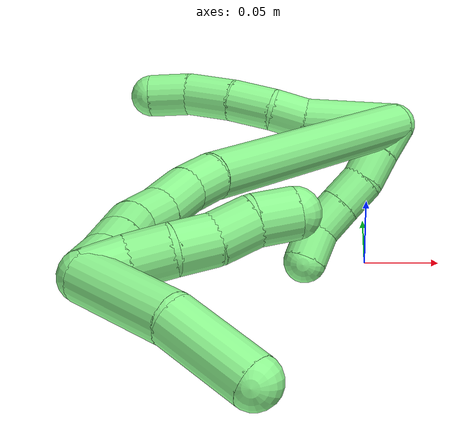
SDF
<sdf version="1.7">
 <world name="default">
  <model name="13">
   <static>0</static>
   <link name="13">
    <collision name="collision-cylinder-e_1_2_8">
     <pose>-0.026139 -0.002674 0.000236 1.48257 -1.46847 -1.3811</pose>
     <geometry><cylinder><radius>0.0125</radius><length>0.052552</length></cylinder></geometry>
     <surface>
      <friction><ode><mu>1.16</mu><mu2>1.16</mu2><slip1>0</slip1><slip2>0</slip2></ode></friction>
      <contact><ode><kp>1e+06</kp><kd>1</kd><max_vel>0</max_vel><min_depth>0.001</min_depth></ode></contact>
     </surface>
    </collision>
    <visual name="visual-cylinder-e_1_2_8">
     <pose>-0.026139 -0.002674 0.000236 1.48257 -1.46847 -1.3811</pose>
     <geometry><cylinder><radius>0.0125</radius><length>0.052552</length></cylinder></geometry>
     <material><ambient>0.564706 0.984314 0.572549 1</ambient></material>
    </visual>
    <collision name="collision-cylinder-e_2_8_9">
     <pose>-0.062251 -0.003985 0.000845 -1.30399 -1.43019 1.17081</pose>
     <geometry><cylinder><radius>0.0125</radius><length>0.020146</length></cylinder></geometry>
     <surface>
      <friction><ode><mu>1.16</mu><mu2>1.16</mu2><slip1>0</slip1><slip2>0</slip2></ode></friction>
      <contact><ode><kp>1e+06</kp><kd>1</kd><max_vel>0</max_vel><min_depth>0.001</min_depth></ode></contact>
     </surface>
    </collision>
    <visual name="visual-cylinder-e_2_8_9">
     <pose>-0.062251 -0.003985 0.000845 -1.30399 -1.43019 1.17081</pose>
     <geometry><cylinder><radius>0.0125</radius><length>0.020146</length></cylinder></geometry>
     <material><ambient>0.564706 0.984314 0.572549 1</ambient></material>
    </visual>
    <collision name="collision-cylinder-e_3_9_10">
     <pose>-0.085007 -0.001952 -0.001076 -2.85659 -1.38597 2.79941</pose>
     <geometry><cylinder><radius>0.0125</radius><length>0.026009</length></cylinder></geometry>
     <surface>
      <friction><ode><mu>1.16</mu><mu2>1.16</mu2><slip1>0</slip1><slip2>0</slip2></ode></friction>
      <contact><ode><kp>1e+06</kp><kd>1</kd><max_vel>0</max_vel><min_depth>0.001</min_depth></ode></contact>
     </surface>
    </collision>
    <visual name="visual-cylinder-e_3_9_10">
     <pose>-0.085007 -0.001952 -0.001076 -2.85659 -1.38597 2.79941</pose>
     <geometry><cylinder><radius>0.0125</radius><length>0.026009</length></cylinder></geometry>
     <material><ambient>0.564706 0.984314 0.572549 1</ambient></material>
    </visual>
    <collision name="collision-cylinder-e_4_10_11">
     <pose>-0.111302 -0.001717 -0.006394 2.99814 -1.34839 -2.96225</pose>
     <geometry><cylinder><radius>0.0125</radius><length>0.027706</length></cylinder></geometry>
     <surface>
      <friction><ode><mu>1.16</mu><mu2>1.16</mu2><slip1>0</slip1><slip2>0</slip2></ode></friction>
      <contact><ode><kp>1e+06</kp><kd>1</kd><max_vel>0</max_vel><min_depth>0.001</min_depth></ode></contact>
     </surface>
    </collision>
    <visual name="visual-cylinder-e_4_10_11">
     <pose>-0.111302 -0.001717 -0.006394 2.99814 -1.34839 -2.96225</pose>
     <geometry><cylinder><radius>0.0125</radius><length>0.027706</length></cylinder></geometry>
     <material><ambient>0.564706 0.984314 0.572549 1</ambient></material>
    </visual>
    <collision name="collision-cylinder-e_5_11_6">
     <pose>-0.136346 -0.004552 -0.01001 1.81276 -1.35974 -1.60251</pose>
     <geometry><cylinder><radius>0.0125</radius><length>0.023587</length></cylinder></geometry>
     <surface>
      <friction><ode><mu>1.16</mu><mu2>1.16</mu2><slip1>0</slip1><slip2>0</slip2></ode></friction>
      <contact><ode><kp>1e+06</kp><kd>1</kd><max_vel>0</max_vel><min_depth>0.001</min_depth></ode></contact>
     </surface>
    </collision>
    <visual name="visual-cylinder-e_5_11_6">
     <pose>-0.136346 -0.004552 -0.01001 1.81276 -1.35974 -1.60251</pose>
     <geometry><cylinder><radius>0.0125</radius><length>0.023587</length></cylinder></geometry>
     <material><ambient>0.564706 0.984314 0.572549 1</ambient></material>
    </visual>
    <collision name="collision-cylinder-e_1_2_12">
     <pose>-0.003356 -0.008469 0.004124 1.11763 -0.342289 -0.215312</pose>
     <geometry><cylinder><radius>0.0125</radius><length>0.02</length></cylinder></geometry>
     <surface>
      <friction><ode><mu>1.16</mu><mu2>1.16</mu2><slip1>0</slip1><slip2>0</slip2></ode></friction>
      <contact><ode><kp>1e+06</kp><kd>1</kd><max_vel>0</max_vel><min_depth>0.001</min_depth></ode></contact>
     </surface>
    </collision>
    <visual name="visual-cylinder-e_1_2_12">
     <pose>-0.003356 -0.008469 0.004124 1.11763 -0.342289 -0.215312</pose>
     <geometry><cylinder><radius>0.0125</radius><length>0.02</length></cylinder></geometry>
     <material><ambient>0.564706 0.984314 0.572549 1</ambient></material>
    </visual>
    <collision name="collision-cylinder-e_2_12_13">
     <pose>-0.009711 -0.025744 0.01192 1.17577 -0.304445 -0.203786</pose>
     <geometry><cylinder><radius>0.0125</radius><length>0.02</length></cylinder></geometry>
     <surface>
      <friction><ode><mu>1.16</mu><mu2>1.16</mu2><slip1>0</slip1><slip2>0</slip2></ode></friction>
      <contact><ode><kp>1e+06</kp><kd>1</kd><max_vel>0</max_vel><min_depth>0.001</min_depth></ode></contact>
     </surface>
    </collision>
    <visual name="visual-cylinder-e_2_12_13">
     <pose>-0.009711 -0.025744 0.01192 1.17577 -0.304445 -0.203786</pose>
     <geometry><cylinder><radius>0.0125</radius><length>0.02</length></cylinder></geometry>
     <material><ambient>0.564706 0.984314 0.572549 1</ambient></material>
    </visual>
    <collision name="collision-cylinder-e_3_13_14">
     <pose>-0.017951 -0.042286 0.019148 1.13993 -0.551817 -0.359018</pose>
     <geometry><cylinder><radius>0.0125</radius><length>0.02</length></cylinder></geometry>
     <surface>
      <friction><ode><mu>1.16</mu><mu2>1.16</mu2><slip1>0</slip1><slip2>0</slip2></ode></friction>
      <contact><ode><kp>1e+06</kp><kd>1</kd><max_vel>0</max_vel><min_depth>0.001</min_depth></ode></contact>
     </surface>
    </collision>
    <visual name="visual-cylinder-e_3_13_14">
     <pose>-0.017951 -0.042286 0.019148 1.13993 -0.551817 -0.359018</pose>
     <geometry><cylinder><radius>0.0125</radius><length>0.02</length></cylinder></geometry>
     <material><ambient>0.564706 0.984314 0.572549 1</ambient></material>
    </visual>
    <collision name="collision-cylinder-e_4_14_15">
     <pose>-0.028294 -0.057839 0.026297 1.13994 -0.535284 -0.347958</pose>
     <geometry><cylinder><radius>0.0125</radius><length>0.02</length></cylinder></geometry>
     <surface>
      <friction><ode><mu>1.16</mu><mu2>1.16</mu2><slip1>0</slip1><slip2>0</slip2></ode></friction>
      <contact><ode><kp>1e+06</kp><kd>1</kd><max_vel>0</max_vel><min_depth>0.001</min_depth></ode></contact>
     </surface>
    </collision>
    <visual name="visual-cylinder-e_4_14_15">
     <pose>-0.028294 -0.057839 0.026297 1.13994 -0.535284 -0.347958</pose>
     <geometry><cylinder><radius>0.0125</radius><length>0.02</length></cylinder></geometry>
     <material><ambient>0.564706 0.984314 0.572549 1</ambient></material>
    </visual>
    <collision name="collision-cylinder-e_5_15_5">
     <pose>-0.035322 -0.074537 0.034058 1.13201 -0.193996 -0.123485</pose>
     <geometry><cylinder><radius>0.0125</radius><length>0.02</length></cylinder></geometry>
     <surface>
      <friction><ode><mu>1.16</mu><mu2>1.16</mu2><slip1>0</slip1><slip2>0</slip2></ode></friction>
      <contact><ode><kp>1e+06</kp><kd>1</kd><max_vel>0</max_vel><min_depth>0.001</min_depth></ode></contact>
     </surface>
    </collision>
    <visual name="visual-cylinder-e_5_15_5">
     <pose>-0.035322 -0.074537 0.034058 1.13201 -0.193996 -0.123485</pose>
     <geometry><cylinder><radius>0.0125</radius><length>0.02</length></cylinder></geometry>
     <material><ambient>0.564706 0.984314 0.572549 1</ambient></material>
    </visual>
    <collision name="collision-cylinder-e_1_2_16">
     <pose>-0.042166 -0.014835 0.071598 0.204302 -0.5231 -0.054865</pose>
     <geometry><cylinder><radius>0.0125</radius><length>0.168811</length></cylinder></geometry>
     <surface>
      <friction><ode><mu>1.16</mu><mu2>1.16</mu2><slip1>0</slip1><slip2>0</slip2></ode></friction>
      <contact><ode><kp>1e+06</kp><kd>1</kd><max_vel>0</max_vel><min_depth>0.001</min_depth></ode></contact>
     </surface>
    </collision>
    <visual name="visual-cylinder-e_1_2_16">
     <pose>-0.042166 -0.014835 0.071598 0.204302 -0.5231 -0.054865</pose>
     <geometry><cylinder><radius>0.0125</radius><length>0.168811</length></cylinder></geometry>
     <material><ambient>0.564706 0.984314 0.572549 1</ambient></material>
    </visual>
    <collision name="collision-cylinder-e_2_16_17">
     <pose>-0.089368 -0.033104 0.151361 0.398179 -0.516908 -0.106578</pose>
     <geometry><cylinder><radius>0.0125</radius><length>0.02038</length></cylinder></geometry>
     <surface>
      <friction><ode><mu>1.16</mu><mu2>1.16</mu2><slip1>0</slip1><slip2>0</slip2></ode></friction>
      <contact><ode><kp>1e+06</kp><kd>1</kd><max_vel>0</max_vel><min_depth>0.001</min_depth></ode></contact>
     </surface>
    </collision>
    <visual name="visual-cylinder-e_2_16_17">
     <pose>-0.089368 -0.033104 0.151361 0.398179 -0.516908 -0.106578</pose>
     <geometry><cylinder><radius>0.0125</radius><length>0.02038</length></cylinder></geometry>
     <material><ambient>0.564706 0.984314 0.572549 1</ambient></material>
    </visual>
    <collision name="collision-cylinder-e_3_17_18">
     <pose>-0.098527 -0.04112 0.170699 0.389126 -0.329042 -0.065408</pose>
     <geometry><cylinder><radius>0.0125</radius><length>0.025519</length></cylinder></geometry>
     <surface>
      <friction><ode><mu>1.16</mu><mu2>1.16</mu2><slip1>0</slip1><slip2>0</slip2></ode></friction>
      <contact><ode><kp>1e+06</kp><kd>1</kd><max_vel>0</max_vel><min_depth>0.001</min_depth></ode></contact>
     </surface>
    </collision>
    <visual name="visual-cylinder-e_3_17_18">
     <pose>-0.098527 -0.04112 0.170699 0.389126 -0.329042 -0.065408</pose>
     <geometry><cylinder><radius>0.0125</radius><length>0.025519</length></cylinder></geometry>
     <material><ambient>0.564706 0.984314 0.572549 1</ambient></material>
    </visual>
    <collision name="collision-cylinder-e_4_18_19">
     <pose>-0.106703 -0.048404 0.191978 0.261351 -0.36958 -0.049123</pose>
     <geometry><cylinder><radius>0.0125</radius><length>0.022438</length></cylinder></geometry>
     <surface>
      <friction><ode><mu>1.16</mu><mu2>1.16</mu2><slip1>0</slip1><slip2>0</slip2></ode></friction>
      <contact><ode><kp>1e+06</kp><kd>1</kd><max_vel>0</max_vel><min_depth>0.001</min_depth></ode></contact>
     </surface>
    </collision>
    <visual name="visual-cylinder-e_4_18_19">
     <pose>-0.106703 -0.048404 0.191978 0.261351 -0.36958 -0.049123</pose>
     <geometry><cylinder><radius>0.0125</radius><length>0.022438</length></cylinder></geometry>
     <material><ambient>0.564706 0.984314 0.572549 1</ambient></material>
    </visual>
    <collision name="collision-cylinder-e_5_19_20">
     <pose>-0.111489 -0.053518 0.211896 0.240924 -0.072475 -0.008777</pose>
     <geometry><cylinder><radius>0.0125</radius><length>0.02026</length></cylinder></geometry>
     <surface>
      <friction><ode><mu>1.16</mu><mu2>1.16</mu2><slip1>0</slip1><slip2>0</slip2></ode></friction>
      <contact><ode><kp>1e+06</kp><kd>1</kd><max_vel>0</max_vel><min_depth>0.001</min_depth></ode></contact>
     </surface>
    </collision>
    <visual name="visual-cylinder-e_5_19_20">
     <pose>-0.111489 -0.053518 0.211896 0.240924 -0.072475 -0.008777</pose>
     <geometry><cylinder><radius>0.0125</radius><length>0.02026</length></cylinder></geometry>
     <material><ambient>0.564706 0.984314 0.572549 1</ambient></material>
    </visual>
    <collision name="collision-cylinder-e_6_20_21">
     <pose>-0.11303 -0.058534 0.232346 0.240224 -0.073573 -0.008884</pose>
     <geometry><cylinder><radius>0.0125</radius><length>0.021967</length></cylinder></geometry>
     <surface>
      <friction><ode><mu>1.16</mu><mu2>1.16</mu2><slip1>0</slip1><slip2>0</slip2></ode></friction>
      <contact><ode><kp>1e+06</kp><kd>1</kd><max_vel>0</max_vel><min_depth>0.001</min_depth></ode></contact>
     </surface>
    </collision>
    <visual name="visual-cylinder-e_6_20_21">
     <pose>-0.11303 -0.058534 0.232346 0.240224 -0.073573 -0.008884</pose>
     <geometry><cylinder><radius>0.0125</radius><length>0.021967</length></cylinder></geometry>
     <material><ambient>0.564706 0.984314 0.572549 1</ambient></material>
    </visual>
    <collision name="collision-cylinder-e_7_21_1">
     <pose>-0.115413 -0.06346 0.25291 0.229555 -0.153412 -0.01772</pose>
     <geometry><cylinder><radius>0.0125</radius><length>0.020625</length></cylinder></geometry>
     <surface>
      <friction><ode><mu>1.16</mu><mu2>1.16</mu2><slip1>0</slip1><slip2>0</slip2></ode></friction>
      <contact><ode><kp>1e+06</kp><kd>1</kd><max_vel>0</max_vel><min_depth>0.001</min_depth></ode></contact>
     </surface>
    </collision>
    <visual name="visual-cylinder-e_7_21_1">
     <pose>-0.115413 -0.06346 0.25291 0.229555 -0.153412 -0.01772</pose>
     <geometry><cylinder><radius>0.0125</radius><length>0.020625</length></cylinder></geometry>
     <material><ambient>0.564706 0.984314 0.572549 1</ambient></material>
    </visual>
    <collision name="collision-cylinder-e_1_1_22">
     <pose>-0.09447 -0.0686 0.277352 0.191953 0.989656 0.103805</pose>
     <geometry><cylinder><radius>0.0125</radius><length>0.053884</length></cylinder></geometry>
     <surface>
      <friction><ode><mu>1.16</mu><mu2>1.16</mu2><slip1>0</slip1><slip2>0</slip2></ode></friction>
      <contact><ode><kp>1e+06</kp><kd>1</kd><max_vel>0</max_vel><min_depth>0.001</min_depth></ode></contact>
     </surface>
    </collision>
    <visual name="visual-cylinder-e_1_1_22">
     <pose>-0.09447 -0.0686 0.277352 0.191953 0.989656 0.103805</pose>
     <geometry><cylinder><radius>0.0125</radius><length>0.053884</length></cylinder></geometry>
     <material><ambient>0.564706 0.984314 0.572549 1</ambient></material>
    </visual>
    <collision name="collision-cylinder-e_2_22_4">
     <pose>-0.052426 -0.078809 0.301663 0.646341 1.00988 0.366088</pose>
     <geometry><cylinder><radius>0.0125</radius><length>0.046116</length></cylinder></geometry>
     <surface>
      <friction><ode><mu>1.16</mu><mu2>1.16</mu2><slip1>0</slip1><slip2>0</slip2></ode></friction>
      <contact><ode><kp>1e+06</kp><kd>1</kd><max_vel>0</max_vel><min_depth>0.001</min_depth></ode></contact>
     </surface>
    </collision>
    <visual name="visual-cylinder-e_2_22_4">
     <pose>-0.052426 -0.078809 0.301663 0.646341 1.00988 0.366088</pose>
     <geometry><cylinder><radius>0.0125</radius><length>0.046116</length></cylinder></geometry>
     <material><ambient>0.564706 0.984314 0.572549 1</ambient></material>
    </visual>
    <collision name="collision-cylinder-e_1_1_23">
     <pose>-0.108745 -0.061829 0.258779 -2.36924 0.969105 -1.82624</pose>
     <geometry><cylinder><radius>0.0125</radius><length>0.02</length></cylinder></geometry>
     <surface>
      <friction><ode><mu>1.16</mu><mu2>1.16</mu2><slip1>0</slip1><slip2>0</slip2></ode></friction>
      <contact><ode><kp>1e+06</kp><kd>1</kd><max_vel>0</max_vel><min_depth>0.001</min_depth></ode></contact>
     </surface>
    </collision>
    <visual name="visual-cylinder-e_1_1_23">
     <pose>-0.108745 -0.061829 0.258779 -2.36924 0.969105 -1.82624</pose>
     <geometry><cylinder><radius>0.0125</radius><length>0.02</length></cylinder></geometry>
     <material><ambient>0.564706 0.984314 0.572549 1</ambient></material>
    </visual>
    <collision name="collision-cylinder-e_2_23_24">
     <pose>-0.091634 -0.054151 0.251989 -2.20389 1.09017 -1.74974</pose>
     <geometry><cylinder><radius>0.0125</radius><length>0.02</length></cylinder></geometry>
     <surface>
      <friction><ode><mu>1.16</mu><mu2>1.16</mu2><slip1>0</slip1><slip2>0</slip2></ode></friction>
      <contact><ode><kp>1e+06</kp><kd>1</kd><max_vel>0</max_vel><min_depth>0.001</min_depth></ode></contact>
     </surface>
    </collision>
    <visual name="visual-cylinder-e_2_23_24">
     <pose>-0.091634 -0.054151 0.251989 -2.20389 1.09017 -1.74974</pose>
     <geometry><cylinder><radius>0.0125</radius><length>0.02</length></cylinder></geometry>
     <material><ambient>0.564706 0.984314 0.572549 1</ambient></material>
    </visual>
    <collision name="collision-cylinder-e_3_24_25">
     <pose>-0.074493 -0.047471 0.244477 -2.58787 0.974494 -2.15707</pose>
     <geometry><cylinder><radius>0.0125</radius><length>0.02</length></cylinder></geometry>
     <surface>
      <friction><ode><mu>1.16</mu><mu2>1.16</mu2><slip1>0</slip1><slip2>0</slip2></ode></friction>
      <contact><ode><kp>1e+06</kp><kd>1</kd><max_vel>0</max_vel><min_depth>0.001</min_depth></ode></contact>
     </surface>
    </collision>
    <visual name="visual-cylinder-e_3_24_25">
     <pose>-0.074493 -0.047471 0.244477 -2.58787 0.974494 -2.15707</pose>
     <geometry><cylinder><radius>0.0125</radius><length>0.02</length></cylinder></geometry>
     <material><ambient>0.564706 0.984314 0.572549 1</ambient></material>
    </visual>
    <collision name="collision-cylinder-e_4_25_26">
     <pose>-0.058656 -0.039574 0.235416 -2.28495 0.857711 -1.57221</pose>
     <geometry><cylinder><radius>0.0125</radius><length>0.02</length></cylinder></geometry>
     <surface>
      <friction><ode><mu>1.16</mu><mu2>1.16</mu2><slip1>0</slip1><slip2>0</slip2></ode></friction>
      <contact><ode><kp>1e+06</kp><kd>1</kd><max_vel>0</max_vel><min_depth>0.001</min_depth></ode></contact>
     </surface>
    </collision>
    <visual name="visual-cylinder-e_4_25_26">
     <pose>-0.058656 -0.039574 0.235416 -2.28495 0.857711 -1.57221</pose>
     <geometry><cylinder><radius>0.0125</radius><length>0.02</length></cylinder></geometry>
     <material><ambient>0.564706 0.984314 0.572549 1</ambient></material>
    </visual>
    <collision name="collision-cylinder-e_5_26_3">
     <pose>-0.042463 -0.03199 0.226823 -2.59153 1.04103 -2.22673</pose>
     <geometry><cylinder><radius>0.0125</radius><length>0.02</length></cylinder></geometry>
     <surface>
      <friction><ode><mu>1.16</mu><mu2>1.16</mu2><slip1>0</slip1><slip2>0</slip2></ode></friction>
      <contact><ode><kp>1e+06</kp><kd>1</kd><max_vel>0</max_vel><min_depth>0.001</min_depth></ode></contact>
     </surface>
    </collision>
    <visual name="visual-cylinder-e_5_26_3">
     <pose>-0.042463 -0.03199 0.226823 -2.59153 1.04103 -2.22673</pose>
     <geometry><cylinder><radius>0.0125</radius><length>0.02</length></cylinder></geometry>
     <material><ambient>0.564706 0.984314 0.572549 1</ambient></material>
    </visual>
    <collision name="collision-sphere-3">
     <pose>-0.033834 -0.029348 0.222515 0 -0 0</pose>
     <geometry><sphere><radius>0.0125</radius></sphere></geometry>
     <surface>
      <friction><ode><mu>1.16</mu><mu2>1.16</mu2><slip1>0</slip1><slip2>0</slip2></ode></friction>
      <contact><ode><kp>1e+06</kp><kd>1</kd><max_vel>0</max_vel><min_depth>0.001</min_depth></ode></contact>
     </surface>
    </collision>
    <visual name="visual-sphere-3">
     <pose>-0.033834 -0.029348 0.222515 0 -0 0</pose>
     <geometry><sphere><radius>0.0125</radius></sphere></geometry>
     <material><ambient>0.564706 0.984314 0.572549 1</ambient></material>
    </visual>
    <collision name="collision-sphere-26">
     <pose>-0.051092 -0.034631 0.231131 0 -0 0</pose>
     <geometry><sphere><radius>0.0125</radius></sphere></geometry>
     <surface>
      <friction><ode><mu>1.16</mu><mu2>1.16</mu2><slip1>0</slip1><slip2>0</slip2></ode></friction>
      <contact><ode><kp>1e+06</kp><kd>1</kd><max_vel>0</max_vel><min_depth>0.001</min_depth></ode></contact>
     </surface>
    </collision>
    <visual name="visual-sphere-26">
     <pose>-0.051092 -0.034631 0.231131 0 -0 0</pose>
     <geometry><sphere><radius>0.0125</radius></sphere></geometry>
     <material><ambient>0.564706 0.984314 0.572549 1</ambient></material>
    </visual>
    <collision name="collision-sphere-25">
     <pose>-0.066219 -0.044518 0.239701 0 -0 0</pose>
     <geometry><sphere><radius>0.0125</radius></sphere></geometry>
     <surface>
      <friction><ode><mu>1.16</mu><mu2>1.16</mu2><slip1>0</slip1><slip2>0</slip2></ode></friction>
      <contact><ode><kp>1e+06</kp><kd>1</kd><max_vel>0</max_vel><min_depth>0.001</min_depth></ode></contact>
     </surface>
    </collision>
    <visual name="visual-sphere-25">
     <pose>-0.066219 -0.044518 0.239701 0 -0 0</pose>
     <geometry><sphere><radius>0.0125</radius></sphere></geometry>
     <material><ambient>0.564706 0.984314 0.572549 1</ambient></material>
    </visual>
    <collision name="collision-sphere-24">
     <pose>-0.082767 -0.050424 0.249254 0 -0 0</pose>
     <geometry><sphere><radius>0.0125</radius></sphere></geometry>
     <surface>
      <friction><ode><mu>1.16</mu><mu2>1.16</mu2><slip1>0</slip1><slip2>0</slip2></ode></friction>
      <contact><ode><kp>1e+06</kp><kd>1</kd><max_vel>0</max_vel><min_depth>0.001</min_depth></ode></contact>
     </surface>
    </collision>
    <visual name="visual-sphere-24">
     <pose>-0.082767 -0.050424 0.249254 0 -0 0</pose>
     <geometry><sphere><radius>0.0125</radius></sphere></geometry>
     <material><ambient>0.564706 0.984314 0.572549 1</ambient></material>
    </visual>
    <collision name="collision-sphere-23">
     <pose>-0.100501 -0.057879 0.254725 0 -0 0</pose>
     <geometry><sphere><radius>0.0125</radius></sphere></geometry>
     <surface>
      <friction><ode><mu>1.16</mu><mu2>1.16</mu2><slip1>0</slip1><slip2>0</slip2></ode></friction>
      <contact><ode><kp>1e+06</kp><kd>1</kd><max_vel>0</max_vel><min_depth>0.001</min_depth></ode></contact>
     </surface>
    </collision>
    <visual name="visual-sphere-23">
     <pose>-0.100501 -0.057879 0.254725 0 -0 0</pose>
     <geometry><sphere><radius>0.0125</radius></sphere></geometry>
     <material><ambient>0.564706 0.984314 0.572549 1</ambient></material>
    </visual>
    <collision name="collision-sphere-4">
     <pose>-0.032901 -0.086197 0.311455 0 -0 0</pose>
     <geometry><sphere><radius>0.0125</radius></sphere></geometry>
     <surface>
      <friction><ode><mu>1.16</mu><mu2>1.16</mu2><slip1>0</slip1><slip2>0</slip2></ode></friction>
      <contact><ode><kp>1e+06</kp><kd>1</kd><max_vel>0</max_vel><min_depth>0.001</min_depth></ode></contact>
     </surface>
    </collision>
    <visual name="visual-sphere-4">
     <pose>-0.032901 -0.086197 0.311455 0 -0 0</pose>
     <geometry><sphere><radius>0.0125</radius></sphere></geometry>
     <material><ambient>0.564706 0.984314 0.572549 1</ambient></material>
    </visual>
    <collision name="collision-sphere-22">
     <pose>-0.071951 -0.071422 0.291871 0 -0 0</pose>
     <geometry><sphere><radius>0.0125</radius></sphere></geometry>
     <surface>
      <friction><ode><mu>1.16</mu><mu2>1.16</mu2><slip1>0</slip1><slip2>0</slip2></ode></friction>
      <contact><ode><kp>1e+06</kp><kd>1</kd><max_vel>0</max_vel><min_depth>0.001</min_depth></ode></contact>
     </surface>
    </collision>
    <visual name="visual-sphere-22">
     <pose>-0.071951 -0.071422 0.291871 0 -0 0</pose>
     <geometry><sphere><radius>0.0125</radius></sphere></geometry>
     <material><ambient>0.564706 0.984314 0.572549 1</ambient></material>
    </visual>
    <collision name="collision-sphere-1">
     <pose>-0.116989 -0.065779 0.262833 0 -0 0</pose>
     <geometry><sphere><radius>0.0125</radius></sphere></geometry>
     <surface>
      <friction><ode><mu>1.16</mu><mu2>1.16</mu2><slip1>0</slip1><slip2>0</slip2></ode></friction>
      <contact><ode><kp>1e+06</kp><kd>1</kd><max_vel>0</max_vel><min_depth>0.001</min_depth></ode></contact>
     </surface>
    </collision>
    <visual name="visual-sphere-1">
     <pose>-0.116989 -0.065779 0.262833 0 -0 0</pose>
     <geometry><sphere><radius>0.0125</radius></sphere></geometry>
     <material><ambient>0.564706 0.984314 0.572549 1</ambient></material>
    </visual>
    <collision name="collision-sphere-21">
     <pose>-0.113837 -0.061141 0.242986 0 -0 0</pose>
     <geometry><sphere><radius>0.0125</radius></sphere></geometry>
     <surface>
      <friction><ode><mu>1.16</mu><mu2>1.16</mu2><slip1>0</slip1><slip2>0</slip2></ode></friction>
      <contact><ode><kp>1e+06</kp><kd>1</kd><max_vel>0</max_vel><min_depth>0.001</min_depth></ode></contact>
     </surface>
    </collision>
    <visual name="visual-sphere-21">
     <pose>-0.113837 -0.061141 0.242986 0 -0 0</pose>
     <geometry><sphere><radius>0.0125</radius></sphere></geometry>
     <material><ambient>0.564706 0.984314 0.572549 1</ambient></material>
    </visual>
    <collision name="collision-sphere-6">
     <pose>-0.147877 -0.006951 -0.010602 0 -0 0</pose>
     <geometry><sphere><radius>0.0125</radius></sphere></geometry>
     <surface>
      <friction><ode><mu>1.16</mu><mu2>1.16</mu2><slip1>0</slip1><slip2>0</slip2></ode></friction>
      <contact><ode><kp>1e+06</kp><kd>1</kd><max_vel>0</max_vel><min_depth>0.001</min_depth></ode></contact>
     </surface>
    </collision>
    <visual name="visual-sphere-6">
     <pose>-0.147877 -0.006951 -0.010602 0 -0 0</pose>
     <geometry><sphere><radius>0.0125</radius></sphere></geometry>
     <material><ambient>0.564706 0.984314 0.572549 1</ambient></material>
    </visual>
    <collision name="collision-sphere-11">
     <pose>-0.124814 -0.002154 -0.009418 0 -0 0</pose>
     <geometry><sphere><radius>0.0125</radius></sphere></geometry>
     <surface>
      <friction><ode><mu>1.16</mu><mu2>1.16</mu2><slip1>0</slip1><slip2>0</slip2></ode></friction>
      <contact><ode><kp>1e+06</kp><kd>1</kd><max_vel>0</max_vel><min_depth>0.001</min_depth></ode></contact>
     </surface>
    </collision>
    <visual name="visual-sphere-11">
     <pose>-0.124814 -0.002154 -0.009418 0 -0 0</pose>
     <geometry><sphere><radius>0.0125</radius></sphere></geometry>
     <material><ambient>0.564706 0.984314 0.572549 1</ambient></material>
    </visual>
    <collision name="collision-sphere-10">
     <pose>-0.097791 -0.00128 -0.00337 0 -0 0</pose>
     <geometry><sphere><radius>0.0125</radius></sphere></geometry>
     <surface>
      <friction><ode><mu>1.16</mu><mu2>1.16</mu2><slip1>0</slip1><slip2>0</slip2></ode></friction>
      <contact><ode><kp>1e+06</kp><kd>1</kd><max_vel>0</max_vel><min_depth>0.001</min_depth></ode></contact>
     </surface>
    </collision>
    <visual name="visual-sphere-10">
     <pose>-0.097791 -0.00128 -0.00337 0 -0 0</pose>
     <geometry><sphere><radius>0.0125</radius></sphere></geometry>
     <material><ambient>0.564706 0.984314 0.572549 1</ambient></material>
    </visual>
    <collision name="collision-sphere-9">
     <pose>-0.072224 -0.002624 0.001217 0 -0 0</pose>
     <geometry><sphere><radius>0.0125</radius></sphere></geometry>
     <surface>
      <friction><ode><mu>1.16</mu><mu2>1.16</mu2><slip1>0</slip1><slip2>0</slip2></ode></friction>
      <contact><ode><kp>1e+06</kp><kd>1</kd><max_vel>0</max_vel><min_depth>0.001</min_depth></ode></contact>
     </surface>
    </collision>
    <visual name="visual-sphere-9">
     <pose>-0.072224 -0.002624 0.001217 0 -0 0</pose>
     <geometry><sphere><radius>0.0125</radius></sphere></geometry>
     <material><ambient>0.564706 0.984314 0.572549 1</ambient></material>
    </visual>
    <collision name="collision-sphere-2">
     <geometry><sphere><radius>0.0125</radius></sphere></geometry>
     <surface>
      <friction><ode><mu>1.16</mu><mu2>1.16</mu2><slip1>0</slip1><slip2>0</slip2></ode></friction>
      <contact><ode><kp>1e+06</kp><kd>1</kd><max_vel>0</max_vel><min_depth>0.001</min_depth></ode></contact>
     </surface>
    </collision>
    <visual name="visual-sphere-2">
     <geometry><sphere><radius>0.0125</radius></sphere></geometry>
     <material><ambient>0.564706 0.984314 0.572549 1</ambient></material>
    </visual>
    <collision name="collision-sphere-19">
     <pose>-0.110756 -0.051107 0.202084 0 -0 0</pose>
     <geometry><sphere><radius>0.0125</radius></sphere></geometry>
     <surface>
      <friction><ode><mu>1.16</mu><mu2>1.16</mu2><slip1>0</slip1><slip2>0</slip2></ode></friction>
      <contact><ode><kp>1e+06</kp><kd>1</kd><max_vel>0</max_vel><min_depth>0.001</min_depth></ode></contact>
     </surface>
    </collision>
    <visual name="visual-sphere-19">
     <pose>-0.110756 -0.051107 0.202084 0 -0 0</pose>
     <geometry><sphere><radius>0.0125</radius></sphere></geometry>
     <material><ambient>0.564706 0.984314 0.572549 1</ambient></material>
    </visual>
    <collision name="collision-sphere-8">
     <pose>-0.052277 -0.005347 0.000473 0 -0 0</pose>
     <geometry><sphere><radius>0.0125</radius></sphere></geometry>
     <surface>
      <friction><ode><mu>1.16</mu><mu2>1.16</mu2><slip1>0</slip1><slip2>0</slip2></ode></friction>
      <contact><ode><kp>1e+06</kp><kd>1</kd><max_vel>0</max_vel><min_depth>0.001</min_depth></ode></contact>
     </surface>
    </collision>
    <visual name="visual-sphere-8">
     <pose>-0.052277 -0.005347 0.000473 0 -0 0</pose>
     <geometry><sphere><radius>0.0125</radius></sphere></geometry>
     <material><ambient>0.564706 0.984314 0.572549 1</ambient></material>
    </visual>
    <collision name="collision-sphere-12">
     <pose>-0.006713 -0.016938 0.008248 0 -0 0</pose>
     <geometry><sphere><radius>0.0125</radius></sphere></geometry>
     <surface>
      <friction><ode><mu>1.16</mu><mu2>1.16</mu2><slip1>0</slip1><slip2>0</slip2></ode></friction>
      <contact><ode><kp>1e+06</kp><kd>1</kd><max_vel>0</max_vel><min_depth>0.001</min_depth></ode></contact>
     </surface>
    </collision>
    <visual name="visual-sphere-12">
     <pose>-0.006713 -0.016938 0.008248 0 -0 0</pose>
     <geometry><sphere><radius>0.0125</radius></sphere></geometry>
     <material><ambient>0.564706 0.984314 0.572549 1</ambient></material>
    </visual>
    <collision name="collision-sphere-13">
     <pose>-0.012708 -0.034549 0.015591 0 -0 0</pose>
     <geometry><sphere><radius>0.0125</radius></sphere></geometry>
     <surface>
      <friction><ode><mu>1.16</mu><mu2>1.16</mu2><slip1>0</slip1><slip2>0</slip2></ode></friction>
      <contact><ode><kp>1e+06</kp><kd>1</kd><max_vel>0</max_vel><min_depth>0.001</min_depth></ode></contact>
     </surface>
    </collision>
    <visual name="visual-sphere-13">
     <pose>-0.012708 -0.034549 0.015591 0 -0 0</pose>
     <geometry><sphere><radius>0.0125</radius></sphere></geometry>
     <material><ambient>0.564706 0.984314 0.572549 1</ambient></material>
    </visual>
    <collision name="collision-sphere-14">
     <pose>-0.023193 -0.050024 0.022704 0 -0 0</pose>
     <geometry><sphere><radius>0.0125</radius></sphere></geometry>
     <surface>
      <friction><ode><mu>1.16</mu><mu2>1.16</mu2><slip1>0</slip1><slip2>0</slip2></ode></friction>
      <contact><ode><kp>1e+06</kp><kd>1</kd><max_vel>0</max_vel><min_depth>0.001</min_depth></ode></contact>
     </surface>
    </collision>
    <visual name="visual-sphere-14">
     <pose>-0.023193 -0.050024 0.022704 0 -0 0</pose>
     <geometry><sphere><radius>0.0125</radius></sphere></geometry>
     <material><ambient>0.564706 0.984314 0.572549 1</ambient></material>
    </visual>
    <collision name="collision-sphere-15">
     <pose>-0.033395 -0.065654 0.029889 0 -0 0</pose>
     <geometry><sphere><radius>0.0125</radius></sphere></geometry>
     <surface>
      <friction><ode><mu>1.16</mu><mu2>1.16</mu2><slip1>0</slip1><slip2>0</slip2></ode></friction>
      <contact><ode><kp>1e+06</kp><kd>1</kd><max_vel>0</max_vel><min_depth>0.001</min_depth></ode></contact>
     </surface>
    </collision>
    <visual name="visual-sphere-15">
     <pose>-0.033395 -0.065654 0.029889 0 -0 0</pose>
     <geometry><sphere><radius>0.0125</radius></sphere></geometry>
     <material><ambient>0.564706 0.984314 0.572549 1</ambient></material>
    </visual>
    <collision name="collision-sphere-5">
     <pose>-0.03725 -0.08342 0.038226 0 -0 0</pose>
     <geometry><sphere><radius>0.0125</radius></sphere></geometry>
     <surface>
      <friction><ode><mu>1.16</mu><mu2>1.16</mu2><slip1>0</slip1><slip2>0</slip2></ode></friction>
      <contact><ode><kp>1e+06</kp><kd>1</kd><max_vel>0</max_vel><min_depth>0.001</min_depth></ode></contact>
     </surface>
    </collision>
    <visual name="visual-sphere-5">
     <pose>-0.03725 -0.08342 0.038226 0 -0 0</pose>
     <geometry><sphere><radius>0.0125</radius></sphere></geometry>
     <material><ambient>0.564706 0.984314 0.572549 1</ambient></material>
    </visual>
    <collision name="collision-sphere-16">
     <pose>-0.084333 -0.029669 0.143196 0 -0 0</pose>
     <geometry><sphere><radius>0.0125</radius></sphere></geometry>
     <surface>
      <friction><ode><mu>1.16</mu><mu2>1.16</mu2><slip1>0</slip1><slip2>0</slip2></ode></friction>
      <contact><ode><kp>1e+06</kp><kd>1</kd><max_vel>0</max_vel><min_depth>0.001</min_depth></ode></contact>
     </surface>
    </collision>
    <visual name="visual-sphere-16">
     <pose>-0.084333 -0.029669 0.143196 0 -0 0</pose>
     <geometry><sphere><radius>0.0125</radius></sphere></geometry>
     <material><ambient>0.564706 0.984314 0.572549 1</ambient></material>
    </visual>
    <collision name="collision-sphere-17">
     <pose>-0.094404 -0.036539 0.159527 0 -0 0</pose>
     <geometry><sphere><radius>0.0125</radius></sphere></geometry>
     <surface>
      <friction><ode><mu>1.16</mu><mu2>1.16</mu2><slip1>0</slip1><slip2>0</slip2></ode></friction>
      <contact><ode><kp>1e+06</kp><kd>1</kd><max_vel>0</max_vel><min_depth>0.001</min_depth></ode></contact>
     </surface>
    </collision>
    <visual name="visual-sphere-17">
     <pose>-0.094404 -0.036539 0.159527 0 -0 0</pose>
     <geometry><sphere><radius>0.0125</radius></sphere></geometry>
     <material><ambient>0.564706 0.984314 0.572549 1</ambient></material>
    </visual>
    <collision name="collision-sphere-18">
     <pose>-0.10265 -0.045701 0.181871 0 -0 0</pose>
     <geometry><sphere><radius>0.0125</radius></sphere></geometry>
     <surface>
      <friction><ode><mu>1.16</mu><mu2>1.16</mu2><slip1>0</slip1><slip2>0</slip2></ode></friction>
      <contact><ode><kp>1e+06</kp><kd>1</kd><max_vel>0</max_vel><min_depth>0.001</min_depth></ode></contact>
     </surface>
    </collision>
    <visual name="visual-sphere-18">
     <pose>-0.10265 -0.045701 0.181871 0 -0 0</pose>
     <geometry><sphere><radius>0.0125</radius></sphere></geometry>
     <material><ambient>0.564706 0.984314 0.572549 1</ambient></material>
    </visual>
    <collision name="collision-sphere-20">
     <pose>-0.112223 -0.055928 0.221707 0 -0 0</pose>
     <geometry><sphere><radius>0.0125</radius></sphere></geometry>
     <surface>
      <friction><ode><mu>1.16</mu><mu2>1.16</mu2><slip1>0</slip1><slip2>0</slip2></ode></friction>
      <contact><ode><kp>1e+06</kp><kd>1</kd><max_vel>0</max_vel><min_depth>0.001</min_depth></ode></contact>
     </surface>
    </collision>
    <visual name="visual-sphere-20">
     <pose>-0.112223 -0.055928 0.221707 0 -0 0</pose>
     <geometry><sphere><radius>0.0125</radius></sphere></geometry>
     <material><ambient>0.564706 0.984314 0.572549 1</ambient></material>
    </visual>
    <inertial>
     <pose>-0.065372 -0.034171 0.124204 0 -0 0</pose>
     <mass>0.75</mass>
     <inertia>
      <ixx>0.000346</ixx>
      <ixy>0</ixy>
      <ixz>0</ixz>
      <iyy>0.000432</iyy>
      <iyz>0</iyz>
      <izz>0.000312</izz>
     </inertia>
    </inertial>
   </link>
   <pose>0.012189 -0.061415 0.145753 1.10981 0.096349 -0.142913</pose>
  </model>
 </world>
</sdf>
